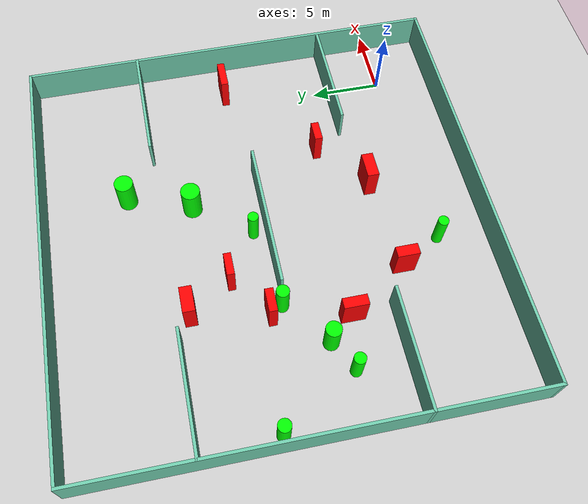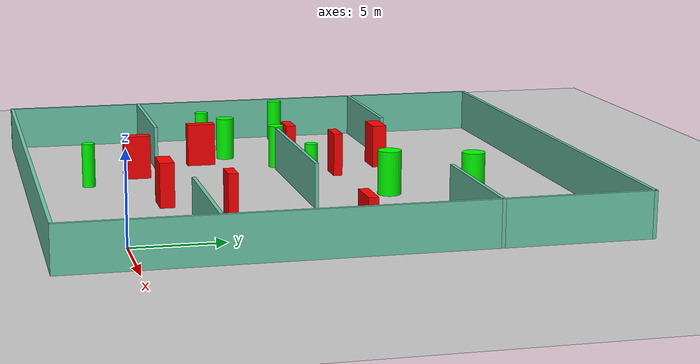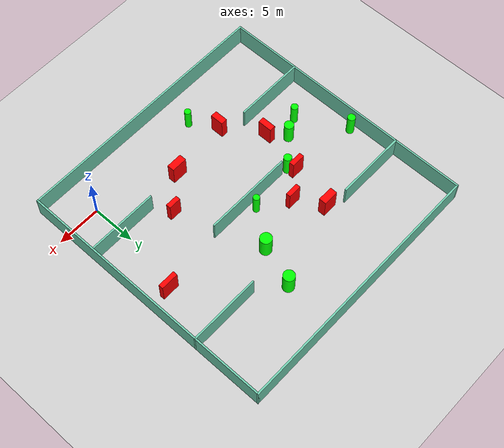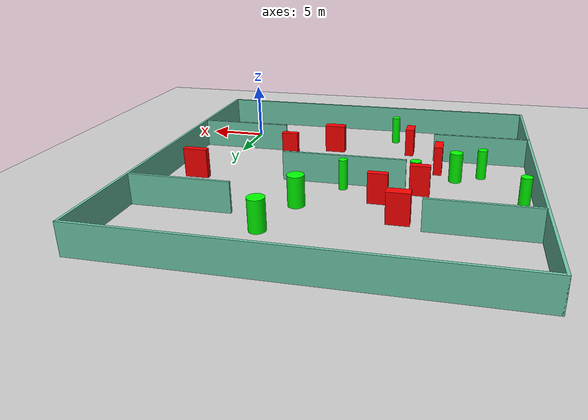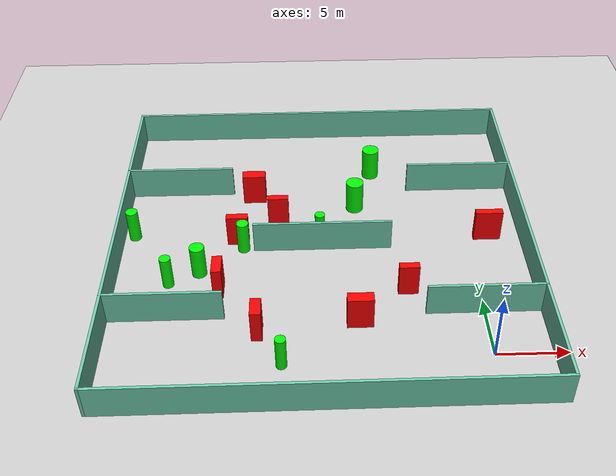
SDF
<sdf version="1.7">
 <world name="default">
  <light name="sun" type="directional">
   <pose>0 0 10 0 -0 0</pose>
   <diffuse>0.8 0.8 0.8 1</diffuse>
   <specular>0.2 0.2 0.2 1</specular>
   <attenuation>
    <range>1000</range>
    <constant>0.9</constant>
    <linear>0.01</linear>
    <quadratic>0.001</quadratic>
   </attenuation>
   <direction>-0.5 0.1 -0.9</direction>
   <spot><inner_angle>0</inner_angle><outer_angle>0</outer_angle><falloff>0</falloff></spot>
  </light>
  <model name="ground_plane">
   <static>1</static>
   <link name="link">
    <collision name="collision">
     <geometry><plane><normal>0 0 1</normal><size>100 100</size></plane></geometry>
     <surface>
      <contact><collide_bitmask>65535</collide_bitmask></contact>
      <friction><ode><mu>100</mu><mu2>50</mu2></ode></friction>
     </surface>
    </collision>
    <visual name="visual">
     <cast_shadows>0</cast_shadows>
     <geometry><plane><normal>0 0 1</normal><size>100 100</size></plane></geometry>
     <material>
      <script><uri>file://media/materials/scripts/gazebo.material</uri><name>Gazebo/Grey</name></script>
     </material>
    </visual>
   </link>
  </model>
  <gravity>0 0 -9.8</gravity>
  <magnetic_field>6e-06 2.3e-05 -4.2e-05</magnetic_field>
  <atmosphere type="adiabatic"/>
  <physics type="ode">
   <max_step_size>0.001</max_step_size>
   <real_time_factor>1</real_time_factor>
   <real_time_update_rate>1000</real_time_update_rate>
  </physics>
  <scene><ambient>0.4 0.4 0.4 1</ambient><background>0.7 0.7 0.7 1</background><shadows>1</shadows></scene>
  <spherical_coordinates>
   <surface_model>EARTH_WGS84</surface_model>
   <latitude_deg>0</latitude_deg>
   <longitude_deg>0</longitude_deg>
   <elevation>0</elevation>
   <heading_deg>0</heading_deg>
  </spherical_coordinates>
  <model name="my_base_walls">
   <link name="Wall_10">
    <collision name="Wall_10_Collision">
     <geometry><box><size>8.2 0.2 2.5</size></box></geometry>
     <pose>0 0 1.25 0 -0 0</pose>
    </collision>
    <visual name="Wall_10_Visual">
     <pose>0 0 1.25 0 -0 0</pose>
     <geometry><box><size>8.2 0.2 2.5</size></box></geometry>
     <material>
      <script><uri>file://media/materials/scripts/gazebo.material</uri><name>Gazebo/Grey</name></script>
      <ambient>0.435294 0.796078 0.67451 1</ambient>
     </material>
     <meta><layer>0</layer></meta>
    </visual>
    <pose>-11 -7 0 0 -0 0</pose>
   </link>
   <link name="Wall_12">
    <collision name="Wall_12_Collision">
     <geometry><box><size>8.2 0.2 2.5</size></box></geometry>
     <pose>0 0 1.25 0 -0 0</pose>
    </collision>
    <visual name="Wall_12_Visual">
     <pose>0 0 1.25 0 -0 0</pose>
     <geometry><box><size>8.2 0.2 2.5</size></box></geometry>
     <material>
      <script><uri>file://media/materials/scripts/gazebo.material</uri><name>Gazebo/Grey</name></script>
      <ambient>0.435294 0.796078 0.67451 1</ambient>
     </material>
     <meta><layer>0</layer></meta>
    </visual>
    <pose>-11 7 0 0 -0 0</pose>
   </link>
   <link name="Wall_14">
    <collision name="Wall_14_Collision">
     <geometry><box><size>8.2 0.2 2.5</size></box></geometry>
     <pose>0 0 1.25 0 -0 0</pose>
    </collision>
    <visual name="Wall_14_Visual">
     <pose>0 0 1.25 0 -0 0</pose>
     <geometry><box><size>8.2 0.2 2.5</size></box></geometry>
     <material>
      <script><uri>file://media/materials/scripts/gazebo.material</uri><name>Gazebo/Grey</name></script>
      <ambient>0.435294 0.796078 0.67451 1</ambient>
     </material>
     <meta><layer>0</layer></meta>
    </visual>
    <pose>11 7 0 0 -0 3.14159</pose>
   </link>
   <link name="Wall_16">
    <collision name="Wall_16_Collision">
     <geometry><box><size>10.2 0.2 2.5</size></box></geometry>
     <pose>0 0 1.25 0 -0 0</pose>
    </collision>
    <visual name="Wall_16_Visual">
     <pose>0 0 1.25 0 -0 0</pose>
     <geometry><box><size>10.2 0.2 2.5</size></box></geometry>
     <material>
      <script><uri>file://media/materials/scripts/gazebo.material</uri><name>Gazebo/Grey</name></script>
      <ambient>0.435294 0.796078 0.67451 1</ambient>
     </material>
     <meta><layer>0</layer></meta>
    </visual>
    <pose>0 0 0 0 -0 3.14159</pose>
   </link>
   <link name="Wall_2">
    <collision name="Wall_2_Collision">
     <geometry><box><size>30.2 0.2 2.5</size></box></geometry>
     <pose>0 0 1.25 0 -0 0</pose>
    </collision>
    <visual name="Wall_2_Visual">
     <pose>0 0 1.25 0 -0 0</pose>
     <geometry><box><size>30.2 0.2 2.5</size></box></geometry>
     <material>
      <script><uri>file://media/materials/scripts/gazebo.material</uri><name>Gazebo/Grey</name></script>
      <ambient>0.435294 0.796078 0.67451 1</ambient>
     </material>
     <meta><layer>0</layer></meta>
    </visual>
    <pose>0 -15 0 0 -0 3.14159</pose>
   </link>
   <link name="Wall_3">
    <collision name="Wall_3_Collision">
     <geometry><box><size>30.2 0.2 2.5</size></box></geometry>
     <pose>0 0 1.25 0 -0 0</pose>
    </collision>
    <visual name="Wall_3_Visual">
     <pose>0 0 1.25 0 -0 0</pose>
     <geometry><box><size>30.2 0.2 2.5</size></box></geometry>
     <material>
      <script><uri>file://media/materials/scripts/gazebo.material</uri><name>Gazebo/Grey</name></script>
      <ambient>0.435294 0.796078 0.67451 1</ambient>
     </material>
     <meta><layer>0</layer></meta>
    </visual>
    <pose>-15 0 0 0 -0 1.5708</pose>
   </link>
   <link name="Wall_4">
    <collision name="Wall_4_Collision">
     <geometry><box><size>30.2 0.2 2.5</size></box></geometry>
     <pose>0 0 1.25 0 -0 0</pose>
    </collision>
    <visual name="Wall_4_Visual">
     <pose>0 0 1.25 0 -0 0</pose>
     <geometry><box><size>30.2 0.2 2.5</size></box></geometry>
     <material>
      <script><uri>file://media/materials/scripts/gazebo.material</uri><name>Gazebo/Grey</name></script>
      <ambient>0.435294 0.796078 0.67451 1</ambient>
     </material>
     <meta><layer>0</layer></meta>
    </visual>
    <pose>0 15 0 0 -0 0</pose>
   </link>
   <link name="Wall_6">
    <collision name="Wall_6_Collision">
     <geometry><box><size>30.2 0.2 2.5</size></box></geometry>
     <pose>0 0 1.25 0 -0 0</pose>
    </collision>
    <visual name="Wall_6_Visual">
     <pose>0 0 1.25 0 -0 0</pose>
     <geometry><box><size>30.2 0.2 2.5</size></box></geometry>
     <material>
      <script><uri>file://media/materials/scripts/gazebo.material</uri><name>Gazebo/Grey</name></script>
      <ambient>0.435294 0.796078 0.67451 1</ambient>
     </material>
     <meta><layer>0</layer></meta>
    </visual>
    <pose>15 0 0 0 -0 1.5708</pose>
   </link>
   <link name="Wall_8">
    <collision name="Wall_8_Collision">
     <geometry><box><size>8.2 0.2 2.5</size></box></geometry>
     <pose>0 0 1.25 0 -0 0</pose>
    </collision>
    <visual name="Wall_8_Visual">
     <pose>0 0 1.25 0 -0 0</pose>
     <geometry><box><size>8.2 0.2 2.5</size></box></geometry>
     <material>
      <script><uri>file://media/materials/scripts/gazebo.material</uri><name>Gazebo/Grey</name></script>
      <ambient>0.435294 0.796078 0.67451 1</ambient>
     </material>
     <meta><layer>0</layer></meta>
    </visual>
    <pose>11 -7 0 0 -0 3.14159</pose>
   </link>
   <static>1</static>
   <pose>-11 11 0 0 -0 0</pose>
  </model>
  <model name="cylinder1">
   <static>1</static>
   <link name="link">
    <inertial>
     <mass>1</mass>
     <inertia><ixx>0.5</ixx><ixy>0</ixy><ixz>0</ixz><iyy>0.5</iyy><iyz>0</iyz><izz>1</izz></inertia>
    </inertial>
    <collision name="collision">
     <geometry><cylinder><radius>0.39986152071812114</radius><length>2.5</length></cylinder></geometry>
    </collision>
    <visual name="visual">
     <geometry><cylinder><radius>0.39986152071812114</radius><length>2.5</length></cylinder></geometry>
     <material>
      <ambient>0 1 0 1</ambient>
      <diffuse>0 1 0 1</diffuse>
      <specular>0.1 0.1 0.1 1</specular>
      <emissive>0 0 0 0</emissive>
     </material>
    </visual>
   </link>
   <pose>-22.082895372311516 7.457191683433344 1.25 0 0 0</pose>
  </model>
  <model name="cylinder2">
   <static>1</static>
   <link name="link">
    <inertial>
     <mass>1</mass>
     <inertia><ixx>0.5</ixx><ixy>0</ixy><ixz>0</ixz><iyy>0.5</iyy><iyz>0</iyz><izz>1</izz></inertia>
    </inertial>
    <collision name="collision">
     <geometry><cylinder><radius>0.36417275054165543</radius><length>2.5</length></cylinder></geometry>
    </collision>
    <visual name="visual">
     <geometry><cylinder><radius>0.36417275054165543</radius><length>2.5</length></cylinder></geometry>
     <material>
      <ambient>0 1 0 1</ambient>
      <diffuse>0 1 0 1</diffuse>
      <specular>0.1 0.1 0.1 1</specular>
      <emissive>0 0 0 0</emissive>
     </material>
    </visual>
   </link>
   <pose>-11.171663867844265 11.938822025903455 1.25 0 0 0</pose>
  </model>
  <model name="cylinder3">
   <static>1</static>
   <link name="link">
    <inertial>
     <mass>1</mass>
     <inertia><ixx>0.5</ixx><ixy>0</ixy><ixz>0</ixz><iyy>0.5</iyy><iyz>0</iyz><izz>1</izz></inertia>
    </inertial>
    <collision name="collision">
     <geometry><cylinder><radius>0.5352110489366777</radius><length>2.5</length></cylinder></geometry>
    </collision>
    <visual name="visual">
     <geometry><cylinder><radius>0.5352110489366777</radius><length>2.5</length></cylinder></geometry>
     <material>
      <ambient>0 1 0 1</ambient>
      <diffuse>0 1 0 1</diffuse>
      <specular>0.1 0.1 0.1 1</specular>
      <emissive>0 0 0 0</emissive>
     </material>
    </visual>
   </link>
   <pose>-19.964889529631233 8.560974484403117 1.25 0 0 0</pose>
  </model>
  <model name="cylinder4">
   <static>1</static>
   <link name="link">
    <inertial>
     <mass>1</mass>
     <inertia><ixx>0.5</ixx><ixy>0</ixy><ixz>0</ixz><iyy>0.5</iyy><iyz>0</iyz><izz>1</izz></inertia>
    </inertial>
    <collision name="collision">
     <geometry><cylinder><radius>0.6495214738313146</radius><length>2.5</length></cylinder></geometry>
    </collision>
    <visual name="visual">
     <geometry><cylinder><radius>0.6495214738313146</radius><length>2.5</length></cylinder></geometry>
     <material>
      <ambient>0 1 0 1</ambient>
      <diffuse>0 1 0 1</diffuse>
      <specular>0.1 0.1 0.1 1</specular>
      <emissive>0 0 0 0</emissive>
     </material>
    </visual>
   </link>
   <pose>-6.857538621142666 20.16164729366536 1.25 0 0 0</pose>
  </model>
  <model name="cylinder5">
   <static>1</static>
   <link name="link">
    <inertial>
     <mass>1</mass>
     <inertia><ixx>0.5</ixx><ixy>0</ixy><ixz>0</ixz><iyy>0.5</iyy><iyz>0</iyz><izz>1</izz></inertia>
    </inertial>
    <collision name="collision">
     <geometry><cylinder><radius>0.43641703139070115</radius><length>2.5</length></cylinder></geometry>
    </collision>
    <visual name="visual">
     <geometry><cylinder><radius>0.43641703139070115</radius><length>2.5</length></cylinder></geometry>
     <material>
      <ambient>0 1 0 1</ambient>
      <diffuse>0 1 0 1</diffuse>
      <specular>0.1 0.1 0.1 1</specular>
      <emissive>0 0 0 0</emissive>
     </material>
    </visual>
   </link>
   <pose>-25.120983928867048 12.767725647117206 1.25 0 0 0</pose>
  </model>
  <model name="cylinder6">
   <static>1</static>
   <link name="link">
    <inertial>
     <mass>1</mass>
     <inertia><ixx>0.5</ixx><ixy>0</ixy><ixz>0</ixz><iyy>0.5</iyy><iyz>0</iyz><izz>1</izz></inertia>
    </inertial>
    <collision name="collision">
     <geometry><cylinder><radius>0.4442297939353284</radius><length>2.5</length></cylinder></geometry>
    </collision>
    <visual name="visual">
     <geometry><cylinder><radius>0.4442297939353284</radius><length>2.5</length></cylinder></geometry>
     <material>
      <ambient>0 1 0 1</ambient>
      <diffuse>0 1 0 1</diffuse>
      <specular>0.1 0.1 0.1 1</specular>
      <emissive>0 0 0 0</emissive>
     </material>
    </visual>
   </link>
   <pose>-16.860626302901494 11.115301956541483 1.25 0 0 0</pose>
  </model>
  <model name="cylinder7">
   <static>1</static>
   <link name="link">
    <inertial>
     <mass>1</mass>
     <inertia><ixx>0.5</ixx><ixy>0</ixy><ixz>0</ixz><iyy>0.5</iyy><iyz>0</iyz><izz>1</izz></inertia>
    </inertial>
    <collision name="collision">
     <geometry><cylinder><radius>0.6633931836669971</radius><length>2.5</length></cylinder></geometry>
    </collision>
    <visual name="visual">
     <geometry><cylinder><radius>0.6633931836669971</radius><length>2.5</length></cylinder></geometry>
     <material>
      <ambient>0 1 0 1</ambient>
      <diffuse>0 1 0 1</diffuse>
      <specular>0.1 0.1 0.1 1</specular>
      <emissive>0 0 0 0</emissive>
     </material>
    </visual>
   </link>
   <pose>-8.374343866122874 15.771876587185666 1.25 0 0 0</pose>
  </model>
  <model name="cylinder8">
   <static>1</static>
   <link name="link">
    <inertial>
     <mass>1</mass>
     <inertia><ixx>0.5</ixx><ixy>0</ixy><ixz>0</ixz><iyy>0.5</iyy><iyz>0</iyz><izz>1</izz></inertia>
    </inertial>
    <collision name="collision">
     <geometry><cylinder><radius>0.36653555971698754</radius><length>2.5</length></cylinder></geometry>
    </collision>
    <visual name="visual">
     <geometry><cylinder><radius>0.36653555971698754</radius><length>2.5</length></cylinder></geometry>
     <material>
      <ambient>0 1 0 1</ambient>
      <diffuse>0 1 0 1</diffuse>
      <specular>0.1 0.1 0.1 1</specular>
      <emissive>0 0 0 0</emissive>
     </material>
    </visual>
   </link>
   <pose>-13.97575971912486 -0.4464154880837956 1.25 0 0 0</pose>
  </model>
  <model name="box1">
   <static>1</static>
   <link name="link">
    <inertial>
     <mass>1</mass>
     <inertia><ixx>0.083</ixx><ixy>0</ixy><ixz>0</ixz><iyy>0.083</iyy><iyz>0</iyz><izz>0.083</izz></inertia>
    </inertial>
    <collision name="collision">
     <geometry><box><size>2.0145272018639995 0.5247629873429954 2.5</size></box></geometry>
    </collision>
    <visual name="visual">
     <geometry><box><size>2.0145272018639995 0.5247629873429954 2.5</size></box></geometry>
     <material>
      <ambient>1 0 0 1</ambient>
      <diffuse>1 0 0 1</diffuse>
      <specular>0.1 0.1 0.1 1</specular>
      <emissive>0 0 0 0</emissive>
     </material>
    </visual>
    <sensor name="my_contact" type="contact">
     <contact><collision>box_collision</collision><topic>__default_topic__</topic></contact>
    </sensor>
   </link>
   <pose>1.4115607378065533 11.854446616594185 1.25 0 0 0</pose>
  </model>
  <model name="box2">
   <static>1</static>
   <link name="link">
    <inertial>
     <mass>1</mass>
     <inertia><ixx>0.083</ixx><ixy>0</ixy><ixz>0</ixz><iyy>0.083</iyy><iyz>0</iyz><izz>0.083</izz></inertia>
    </inertial>
    <collision name="collision">
     <geometry><box><size>1.591653149127415 0.566768137683127 2.5</size></box></geometry>
    </collision>
    <visual name="visual">
     <geometry><box><size>1.591653149127415 0.566768137683127 2.5</size></box></geometry>
     <material>
      <ambient>1 0 0 1</ambient>
      <diffuse>1 0 0 1</diffuse>
      <specular>0.1 0.1 0.1 1</specular>
      <emissive>0 0 0 0</emissive>
     </material>
    </visual>
    <sensor name="my_contact" type="contact">
     <contact><collision>box_collision</collision><topic>__default_topic__</topic></contact>
    </sensor>
   </link>
   <pose>-17.29220818391615 11.954576477575724 1.25 0 0 0</pose>
  </model>
  <model name="box3">
   <static>1</static>
   <link name="link">
    <inertial>
     <mass>1</mass>
     <inertia><ixx>0.083</ixx><ixy>0</ixy><ixz>0</ixz><iyy>0.083</iyy><iyz>0</iyz><izz>0.083</izz></inertia>
    </inertial>
    <collision name="collision">
     <geometry><box><size>1.75809212194037 0.8279072442934493 2.5</size></box></geometry>
    </collision>
    <visual name="visual">
     <geometry><box><size>1.75809212194037 0.8279072442934493 2.5</size></box></geometry>
     <material>
      <ambient>1 0 0 1</ambient>
      <diffuse>1 0 0 1</diffuse>
      <specular>0.1 0.1 0.1 1</specular>
      <emissive>0 0 0 0</emissive>
     </material>
    </visual>
    <sensor name="my_contact" type="contact">
     <contact><collision>box_collision</collision><topic>__default_topic__</topic></contact>
    </sensor>
   </link>
   <pose>-16.197030636016493 17.14242838718808 1.25 0 0 0</pose>
  </model>
  <model name="box4">
   <static>1</static>
   <link name="link">
    <inertial>
     <mass>1</mass>
     <inertia><ixx>0.083</ixx><ixy>0</ixy><ixz>0</ixz><iyy>0.083</iyy><iyz>0</iyz><izz>0.083</izz></inertia>
    </inertial>
    <collision name="collision">
     <geometry><box><size>0.7479031533392929 1.5238101439072467 2.5</size></box></geometry>
    </collision>
    <visual name="visual">
     <geometry><box><size>0.7479031533392929 1.5238101439072467 2.5</size></box></geometry>
     <material>
      <ambient>1 0 0 1</ambient>
      <diffuse>1 0 0 1</diffuse>
      <specular>0.1 0.1 0.1 1</specular>
      <emissive>0 0 0 0</emissive>
     </material>
    </visual>
    <sensor name="my_contact" type="contact">
     <contact><collision>box_collision</collision><topic>__default_topic__</topic></contact>
    </sensor>
   </link>
   <pose>-15.638805374287376 2.532127512056789 1.25 0 0 0</pose>
  </model>
  <model name="box5">
   <static>1</static>
   <link name="link">
    <inertial>
     <mass>1</mass>
     <inertia><ixx>0.083</ixx><ixy>0</ixy><ixz>0</ixz><iyy>0.083</iyy><iyz>0</iyz><izz>0.083</izz></inertia>
    </inertial>
    <collision name="collision">
     <geometry><box><size>1.4156747221346238 0.5444910047443805 2.5</size></box></geometry>
    </collision>
    <visual name="visual">
     <geometry><box><size>1.4156747221346238 0.5444910047443805 2.5</size></box></geometry>
     <material>
      <ambient>1 0 0 1</ambient>
      <diffuse>1 0 0 1</diffuse>
      <specular>0.1 0.1 0.1 1</specular>
      <emissive>0 0 0 0</emissive>
     </material>
    </visual>
    <sensor name="my_contact" type="contact">
     <contact><collision>box_collision</collision><topic>__default_topic__</topic></contact>
    </sensor>
   </link>
   <pose>-5.10545889972126 6.1388256850159255 1.25 0 0 0</pose>
  </model>
  <model name="box6">
   <static>1</static>
   <link name="link">
    <inertial>
     <mass>1</mass>
     <inertia><ixx>0.083</ixx><ixy>0</ixy><ixz>0</ixz><iyy>0.083</iyy><iyz>0</iyz><izz>0.083</izz></inertia>
    </inertial>
    <collision name="collision">
     <geometry><box><size>0.7068327263818712 1.6543319116204618 2.5</size></box></geometry>
    </collision>
    <visual name="visual">
     <geometry><box><size>0.7068327263818712 1.6543319116204618 2.5</size></box></geometry>
     <material>
      <ambient>1 0 0 1</ambient>
      <diffuse>1 0 0 1</diffuse>
      <specular>0.1 0.1 0.1 1</specular>
      <emissive>0 0 0 0</emissive>
     </material>
    </visual>
    <sensor name="my_contact" type="contact">
     <contact><collision>box_collision</collision><topic>__default_topic__</topic></contact>
    </sensor>
   </link>
   <pose>-18.452868551217566 6.773056864709133 1.25 0 0 0</pose>
  </model>
  <model name="box7">
   <static>1</static>
   <link name="link">
    <inertial>
     <mass>1</mass>
     <inertia><ixx>0.083</ixx><ixy>0</ixy><ixz>0</ixz><iyy>0.083</iyy><iyz>0</iyz><izz>0.083</izz></inertia>
    </inertial>
    <collision name="collision">
     <geometry><box><size>1.561037537214886 0.5168925784891611 2.5</size></box></geometry>
    </collision>
    <visual name="visual">
     <geometry><box><size>1.561037537214886 0.5168925784891611 2.5</size></box></geometry>
     <material>
      <ambient>1 0 0 1</ambient>
      <diffuse>1 0 0 1</diffuse>
      <specular>0.1 0.1 0.1 1</specular>
      <emissive>0 0 0 0</emissive>
     </material>
    </visual>
    <sensor name="my_contact" type="contact">
     <contact><collision>box_collision</collision><topic>__default_topic__</topic></contact>
    </sensor>
   </link>
   <pose>-14.29605021843006 14.128464433147943 1.25 0 0 0</pose>
  </model>
  <model name="box8">
   <static>1</static>
   <link name="link">
    <inertial>
     <mass>1</mass>
     <inertia><ixx>0.083</ixx><ixy>0</ixy><ixz>0</ixz><iyy>0.083</iyy><iyz>0</iyz><izz>0.083</izz></inertia>
    </inertial>
    <collision name="collision">
     <geometry><box><size>1.8085583189081667 0.813422281959856 2.5</size></box></geometry>
    </collision>
    <visual name="visual">
     <geometry><box><size>1.8085583189081667 0.813422281959856 2.5</size></box></geometry>
     <material>
      <ambient>1 0 0 1</ambient>
      <diffuse>1 0 0 1</diffuse>
      <specular>0.1 0.1 0.1 1</specular>
      <emissive>0 0 0 0</emissive>
     </material>
    </visual>
    <sensor name="my_contact" type="contact">
     <contact><collision>box_collision</collision><topic>__default_topic__</topic></contact>
    </sensor>
   </link>
   <pose>-8.665320864930024 3.151479848648729 1.25 0 0 0</pose>
  </model>
 </world>
</sdf>
